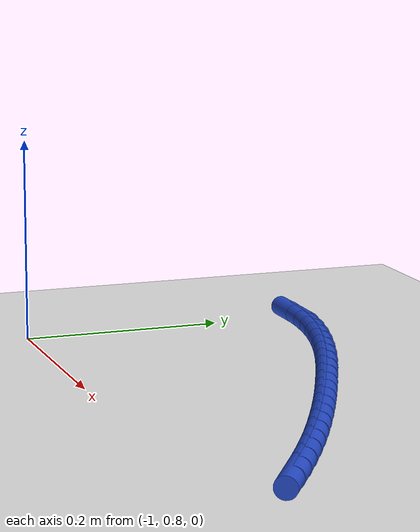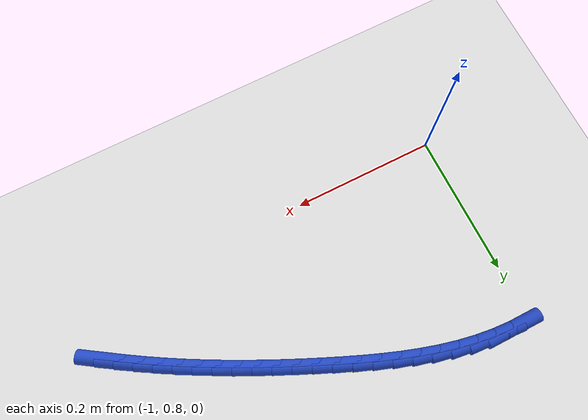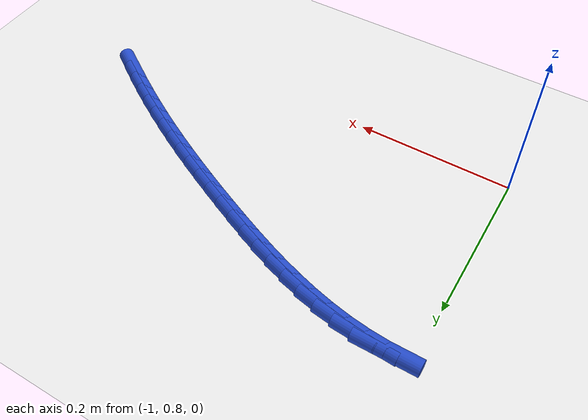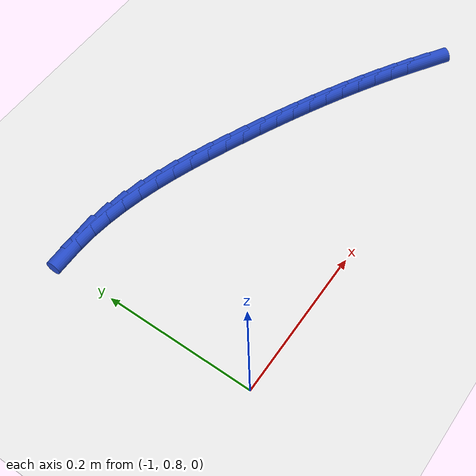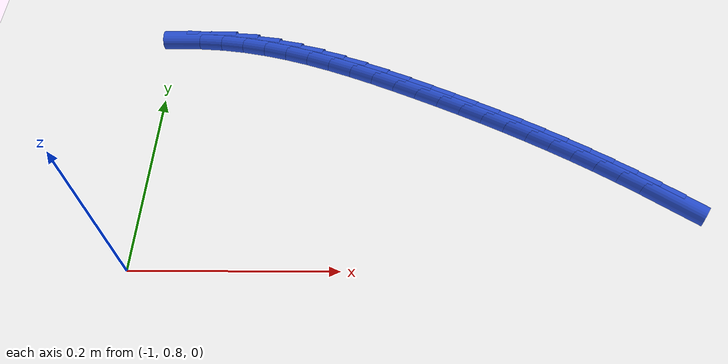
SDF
<sdf version="1.6">
 <world name="default">
  <model name="ground_plane">
   <static>1</static>
   <link name="link">
    <collision name="collision">
     <geometry><plane><normal>0 0 1</normal><size>100 100</size></plane></geometry>
     <surface><friction><ode><mu>100</mu><mu2>50</mu2></ode></friction></surface>
    </collision>
    <visual name="visual">
     <cast_shadows>0</cast_shadows>
     <geometry><plane><normal>0 0 1</normal><size>100 100</size></plane></geometry>
     <material>
      <script><uri>file://media/materials/scripts/gazebo.material</uri><name>Gazebo/WhiteGlow</name></script>
     </material>
    </visual>
   </link>
  </model>
  <model name="line">
   <link name="link_41">
    <pose>-0.48464617709727753 0.8764731561464427 0.01 0 1.57 -0.5803682896140858</pose>
    <collision name="collision">
     <geometry><cylinder><radius>0.01</radius><length>0.08</length></cylinder></geometry>
    </collision>
    <visual name="visual">
     <material>
      <script><name>Gazebo/Blue</name><uri>file://media/materials/scripts/gazebo.material</uri></script>
     </material>
     <geometry><cylinder><radius>0.01</radius><length>0.08</length></cylinder></geometry>
    </visual>
   </link>
   <link name="link_42">
    <pose>-0.5056948020732575 0.8902746332933572 0.01 0 1.57 -0.5603692012227842</pose>
    <collision name="collision">
     <geometry><cylinder><radius>0.01</radius><length>0.08</length></cylinder></geometry>
    </collision>
    <visual name="visual">
     <material>
      <script><name>Gazebo/Blue</name><uri>file://media/materials/scripts/gazebo.material</uri></script>
     </material>
     <geometry><cylinder><radius>0.01</radius><length>0.08</length></cylinder></geometry>
    </visual>
   </link>
   <link name="link_43">
    <pose>-0.5269816865428136 0.9036313864533383 0.01 0 1.57 -0.5412101676311466</pose>
    <collision name="collision">
     <geometry><cylinder><radius>0.01</radius><length>0.08</length></cylinder></geometry>
    </collision>
    <visual name="visual">
     <material>
      <script><name>Gazebo/Blue</name><uri>file://media/materials/scripts/gazebo.material</uri></script>
     </material>
     <geometry><cylinder><radius>0.01</radius><length>0.08</length></cylinder></geometry>
    </visual>
   </link>
   <link name="link_44">
    <pose>-0.5485035569239433 0.916567662301938 0.01 0 1.57 -0.5229299510721955</pose>
    <collision name="collision">
     <geometry><cylinder><radius>0.01</radius><length>0.08</length></cylinder></geometry>
    </collision>
    <visual name="visual">
     <material>
      <script><name>Gazebo/Blue</name><uri>file://media/materials/scripts/gazebo.material</uri></script>
     </material>
     <geometry><cylinder><radius>0.01</radius><length>0.08</length></cylinder></geometry>
    </visual>
   </link>
   <link name="link_45">
    <pose>-0.5702571396346438 0.9291077075147088 0.01 0 1.57 -0.5055616325346642</pose>
    <collision name="collision">
     <geometry><cylinder><radius>0.01</radius><length>0.08</length></cylinder></geometry>
    </collision>
    <visual name="visual">
     <material>
      <script><name>Gazebo/Blue</name><uri>file://media/materials/scripts/gazebo.material</uri></script>
     </material>
     <geometry><cylinder><radius>0.01</radius><length>0.08</length></cylinder></geometry>
    </visual>
   </link>
   <link name="link_46">
    <pose>-0.5922391610929125 0.9412757687672028 0.01 0 1.57 -0.4891327814604529</pose>
    <collision name="collision">
     <geometry><cylinder><radius>0.01</radius><length>0.08</length></cylinder></geometry>
    </collision>
    <visual name="visual">
     <material>
      <script><name>Gazebo/Blue</name><uri>file://media/materials/scripts/gazebo.material</uri></script>
     </material>
     <geometry><cylinder><radius>0.01</radius><length>0.08</length></cylinder></geometry>
    </visual>
   </link>
   <link name="link_47">
    <pose>-0.6144463477167464 0.9530960927349719 0.01 0 1.57 -0.4736657036567464</pose>
    <collision name="collision">
     <geometry><cylinder><radius>0.01</radius><length>0.08</length></cylinder></geometry>
    </collision>
    <visual name="visual">
     <material>
      <script><name>Gazebo/Blue</name><uri>file://media/materials/scripts/gazebo.material</uri></script>
     </material>
     <geometry><cylinder><radius>0.01</radius><length>0.08</length></cylinder></geometry>
    </visual>
   </link>
   <link name="link_48">
    <pose>-0.6368754259241426 0.9645929260935681 0.01 0 1.57 -0.4591777497540767</pose>
    <collision name="collision">
     <geometry><cylinder><radius>0.01</radius><length>0.08</length></cylinder></geometry>
    </collision>
    <visual name="visual">
     <material>
      <script><name>Gazebo/Blue</name><uri>file://media/materials/scripts/gazebo.material</uri></script>
     </material>
     <geometry><cylinder><radius>0.01</radius><length>0.08</length></cylinder></geometry>
    </visual>
   </link>
   <link name="link_49">
    <pose>-0.6595231221330988 0.9757905155185445 0.01 0 1.57 -0.44568166702992895</pose>
    <collision name="collision">
     <geometry><cylinder><radius>0.01</radius><length>0.08</length></cylinder></geometry>
    </collision>
    <visual name="visual">
     <material>
      <script><name>Gazebo/Blue</name><uri>file://media/materials/scripts/gazebo.material</uri></script>
     </material>
     <geometry><cylinder><radius>0.01</radius><length>0.08</length></cylinder></geometry>
    </visual>
   </link>
   <link name="link_50">
    <pose>-0.6823861627616121 0.9867131076854524 0.01 0 1.57 -0.43318597861476743</pose>
    <collision name="collision">
     <geometry><cylinder><radius>0.01</radius><length>0.08</length></cylinder></geometry>
    </collision>
    <visual name="visual">
     <material>
      <script><name>Gazebo/Blue</name><uri>file://media/materials/scripts/gazebo.material</uri></script>
     </material>
     <geometry><cylinder><radius>0.01</radius><length>0.08</length></cylinder></geometry>
    </visual>
   </link>
   <link name="link_51">
    <pose>-0.7054612742276793 0.9973849492698441 0.01 0 1.57 -0.4216953757877235</pose>
    <collision name="collision">
     <geometry><cylinder><radius>0.01</radius><length>0.08</length></cylinder></geometry>
    </collision>
    <visual name="visual">
     <material>
      <script><name>Gazebo/Blue</name><uri>file://media/materials/scripts/gazebo.material</uri></script>
     </material>
     <geometry><cylinder><radius>0.01</radius><length>0.08</length></cylinder></geometry>
    </visual>
   </link>
   <link name="link_52">
    <pose>-0.728745182949298 1.007830286947272 0.01 0 1.57 -0.41104274833403714</pose>
    <collision name="collision">
     <geometry><cylinder><radius>0.01</radius><length>0.08</length></cylinder></geometry>
    </collision>
    <visual name="visual">
     <material>
      <script><name>Gazebo/Blue</name><uri>file://media/materials/scripts/gazebo.material</uri></script>
     </material>
     <geometry><cylinder><radius>0.01</radius><length>0.08</length></cylinder></geometry>
    </visual>
   </link>
   <link name="link_53">
    <pose>-0.7522343967160035 1.018068565671057 0.01 0 1.57 -0.3978588674061662</pose>
    <collision name="collision">
     <geometry><cylinder><radius>0.01</radius><length>0.08</length></cylinder></geometry>
    </collision>
    <visual name="visual">
     <material>
      <script><name>Gazebo/Blue</name><uri>file://media/materials/scripts/gazebo.material</uri></script>
     </material>
     <geometry><cylinder><radius>0.01</radius><length>0.08</length></cylinder></geometry>
    </visual>
   </link>
   <link name="link_54">
    <pose>-0.7759210599572829 1.028023398210745 0.01 0 1.57 -0.3789796508628956</pose>
    <collision name="collision">
     <geometry><cylinder><radius>0.01</radius><length>0.08</length></cylinder></geometry>
    </collision>
    <visual name="visual">
     <material>
      <script><name>Gazebo/Blue</name><uri>file://media/materials/scripts/gazebo.material</uri></script>
     </material>
     <geometry><cylinder><radius>0.01</radius><length>0.08</length></cylinder></geometry>
    </visual>
   </link>
   <link name="link_55">
    <pose>-0.7997932940746526 1.0375300398426746 0.01 0 1.57 -0.3541408575236066</pose>
    <collision name="collision">
     <geometry><cylinder><radius>0.01</radius><length>0.08</length></cylinder></geometry>
    </collision>
    <visual name="visual">
     <material>
      <script><name>Gazebo/Blue</name><uri>file://media/materials/scripts/gazebo.material</uri></script>
     </material>
     <geometry><cylinder><radius>0.01</radius><length>0.08</length></cylinder></geometry>
    </visual>
   </link>
   <link name="link_56">
    <pose>-0.8238390700483269 1.0464204421502306 0.01 0 1.57 -0.3231262213969185</pose>
    <collision name="collision">
     <geometry><cylinder><radius>0.01</radius><length>0.08</length></cylinder></geometry>
    </collision>
    <visual name="visual">
     <material>
      <script><name>Gazebo/Blue</name><uri>file://media/materials/scripts/gazebo.material</uri></script>
     </material>
     <geometry><cylinder><radius>0.01</radius><length>0.08</length></cylinder></geometry>
    </visual>
   </link>
   <link name="link_57">
    <pose>-0.8480463588585204 1.0545265567167992 0.01 0 1.57 -0.28567434669091757</pose>
    <collision name="collision">
     <geometry><cylinder><radius>0.01</radius><length>0.08</length></cylinder></geometry>
    </collision>
    <visual name="visual">
     <material>
      <script><name>Gazebo/Blue</name><uri>file://media/materials/scripts/gazebo.material</uri></script>
     </material>
     <geometry><cylinder><radius>0.01</radius><length>0.08</length></cylinder></geometry>
    </visual>
   </link>
   <link name="link_58">
    <pose>-0.8724031314854485 1.0616803351257653 0.01 0 1.57 -0.2415112120452074</pose>
    <collision name="collision">
     <geometry><cylinder><radius>0.01</radius><length>0.08</length></cylinder></geometry>
    </collision>
    <visual name="visual">
     <material>
      <script><name>Gazebo/Blue</name><uri>file://media/materials/scripts/gazebo.material</uri></script>
     </material>
     <geometry><cylinder><radius>0.01</radius><length>0.08</length></cylinder></geometry>
    </visual>
   </link>
   <link name="link_59">
    <pose>-0.8968973589093244 1.0677137289605143 0.01 0 1.57 -0.19039609347358924</pose>
    <collision name="collision">
     <geometry><cylinder><radius>0.01</radius><length>0.08</length></cylinder></geometry>
    </collision>
    <visual name="visual">
     <material>
      <script><name>Gazebo/Blue</name><uri>file://media/materials/scripts/gazebo.material</uri></script>
     </material>
     <geometry><cylinder><radius>0.01</radius><length>0.08</length></cylinder></geometry>
    </visual>
   </link>
   <link name="link_60">
    <pose>-0.9215170121103634 1.0724586898044315 0.01 0 1.57 -0.13218363398075433</pose>
    <collision name="collision">
     <geometry><cylinder><radius>0.01</radius><length>0.08</length></cylinder></geometry>
    </collision>
    <visual name="visual">
     <material>
      <script><name>Gazebo/Blue</name><uri>file://media/materials/scripts/gazebo.material</uri></script>
     </material>
     <geometry><cylinder><radius>0.01</radius><length>0.08</length></cylinder></geometry>
    </visual>
   </link>
   <link name="link_61">
    <pose>-0.9462500620687799 1.0757471692409024 0.01 0 1.57 -0.06690176368433222</pose>
    <collision name="collision">
     <geometry><cylinder><radius>0.01</radius><length>0.08</length></cylinder></geometry>
    </collision>
    <visual name="visual">
     <material>
      <script><name>Gazebo/Blue</name><uri>file://media/materials/scripts/gazebo.material</uri></script>
     </material>
     <geometry><cylinder><radius>0.01</radius><length>0.08</length></cylinder></geometry>
    </visual>
   </link>
   <link name="link_62">
    <pose>-0.971084479764789 1.0774111188533122 0.01 0 1.57 0.0030754773394463305</pose>
    <collision name="collision">
     <geometry><cylinder><radius>0.01</radius><length>0.08</length></cylinder></geometry>
    </collision>
    <visual name="visual">
     <material>
      <script><name>Gazebo/Blue</name><uri>file://media/materials/scripts/gazebo.material</uri></script>
     </material>
     <geometry><cylinder><radius>0.01</radius><length>0.08</length></cylinder></geometry>
    </visual>
   </link>
  </model>
 </world>
</sdf>
